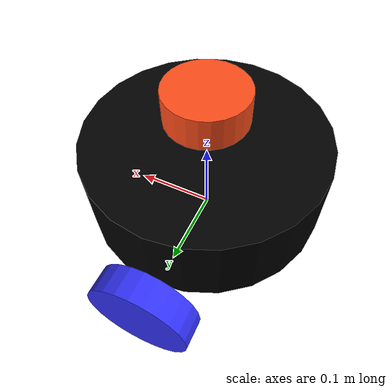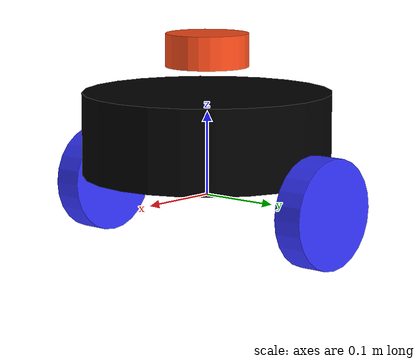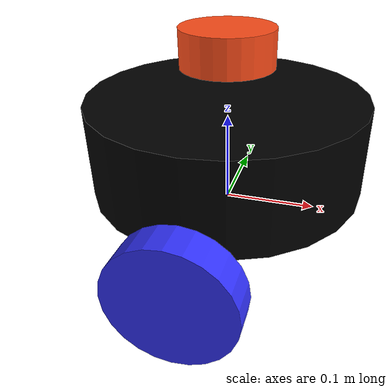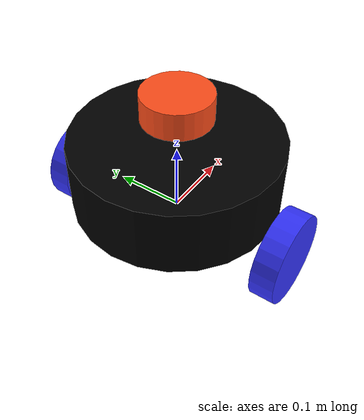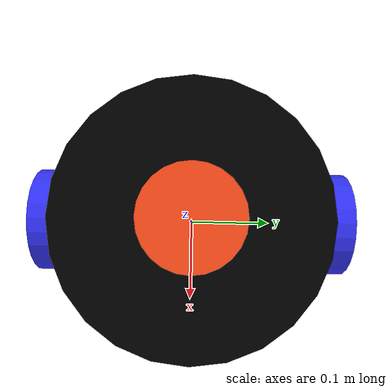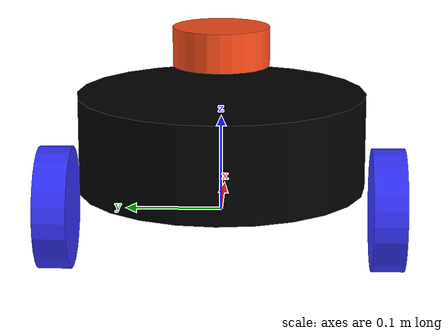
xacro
<?xml version="1.0"?>
<robot xmlns:xacro="http://www.ros.org/wiki/xacro">

    <material name="white">
        <color rgba="1 1 1 1"/>
    </material>

    <material name="orange">
        <color rgba="1 0.3 0.1 1"/>
    </material>

    <material name="blue">
        <color rgba="0.2 0.2 1 1"/>
    </material>

    <material name="black">
        <color rgba="0 0 0 1"/>
    </material>

    <!-- BASE LINK -->

    <link name="base_link">

    </link>

    <!-- CHASSIS LINK -->

    <joint name="chassis_joint" type="fixed">
        <parent link="base_link"/>
        <child link="chassis"/>
        <origin xyz="-0.15 0 0"/>
    </joint>

    <link name="chassis">
        <visual>
            <origin xyz="0.15 0 0.075"/>
            <geometry>
                <cylinder length="0.10" radius="0.15"/>
            </geometry>
            <material name="black"/>
        </visual>
    </link>

    <!-- LEFT WHEEL LINK -->

    <joint name="left_wheel_joint" type="fixed">
        <parent link="base_link"/>
        <child link="left_wheel"/>
        <origin xyz="0 0.175 0" rpy="-${pi/2} 0 0"/>
        <axis xyz="0 0 1"/>
    </joint>

    <link name="left_wheel">
        <visual>
            <geometry>
                <cylinder length="0.035" radius="0.065"/>
            </geometry>
            <material name="blue"/>
        </visual>
    </link>

    <!-- RIGHT WHEEL LINK -->

    <joint name="right_wheel_joint" type="fixed">
        <parent link="base_link"/>
        <child link="right_wheel"/>
        <origin xyz="0 -0.175 0" rpy="${pi/2} 0 0"/>
        <axis xyz="0 0 1"/>
    </joint>

    <link name="right_wheel">
        <visual>
            <geometry>
                <cylinder length="0.035" radius="0.065"/>
            </geometry>
            <material name="blue"/>
        </visual>
    </link>

    <!-- CASTER WHEEL LINK -->

    <!-- LIDAR LINK -->

    <joint name="laser_frame_joint" type="fixed">
        <parent link="base_link"/>
        <child link="laser_frame"/>
        <origin xyz="0 0 0.175" rpy="${pi} 0 0"/>
        <axis xyz="0 0 1"/>
    </joint>

    <link name="laser_frame">
        <visual>
            <geometry>
                <cylinder length="0.04" radius="0.05"/>
            </geometry>
            <material name="orange"/>
        </visual>
    </link>

</robot>
